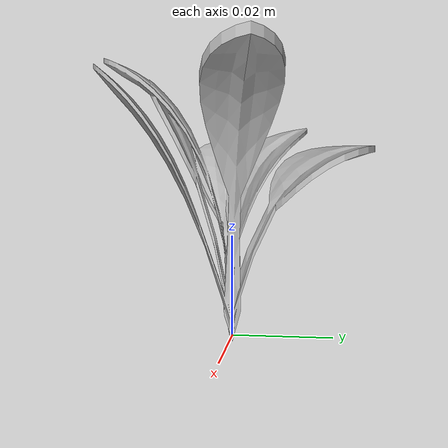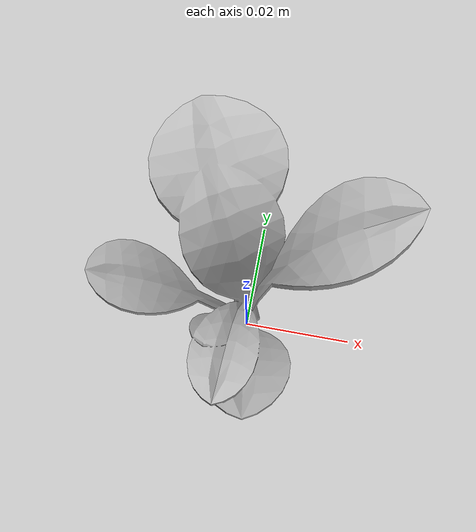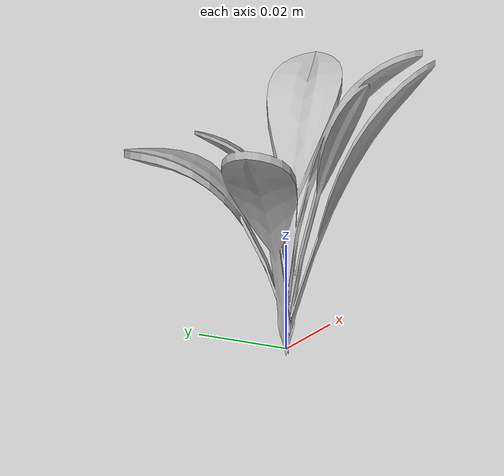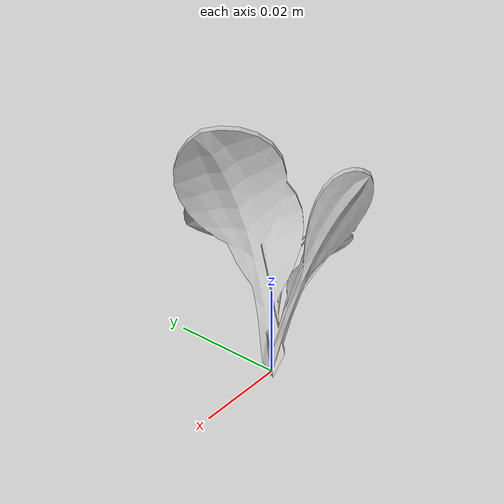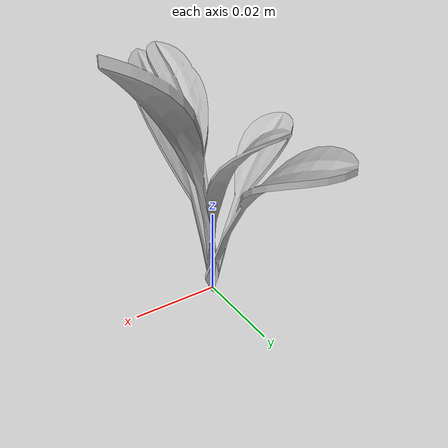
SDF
<sdf version="1.6">
  <model name="sugar_beet_58">
    <static>true</static>
    <link name="body">
      <visual name="visual">
        <geometry>
          <mesh>
            <uri>file:///sugar_beet_58/media/sugar_beet.dae</uri>
          </mesh>
        </geometry>
      </visual>
    </link>
  </model>
</sdf>
